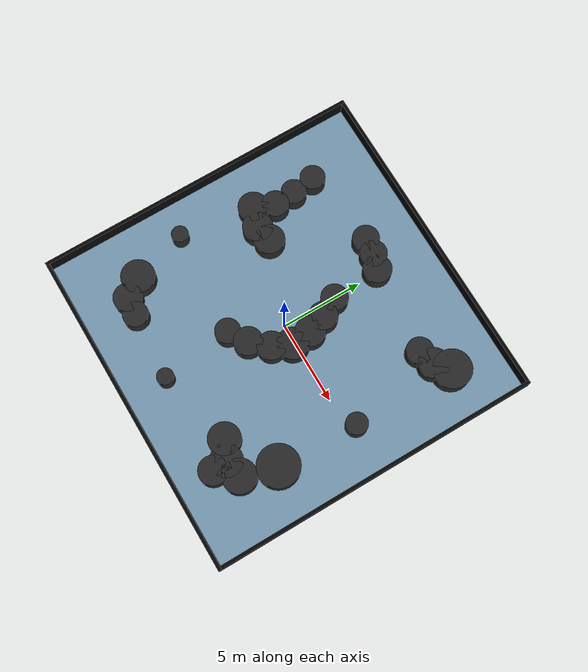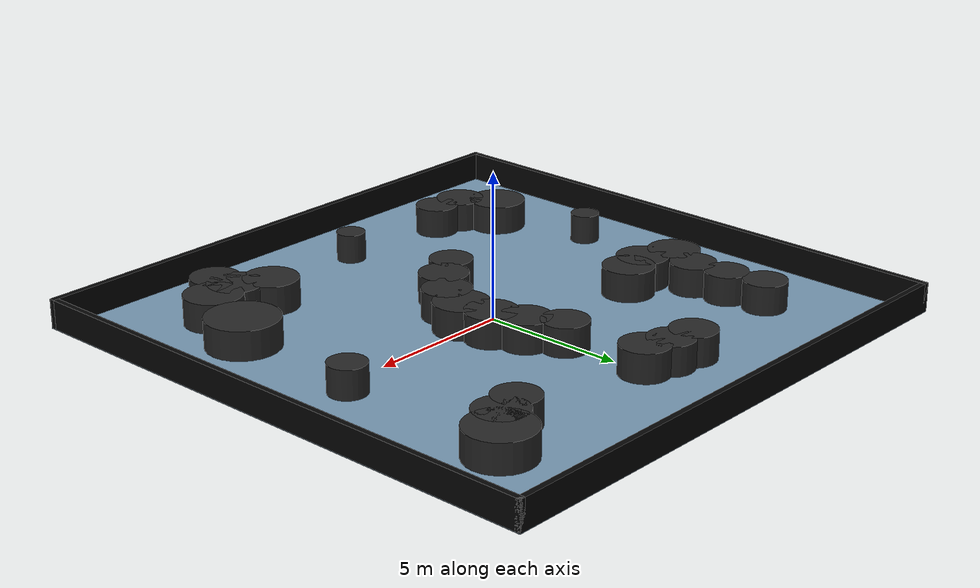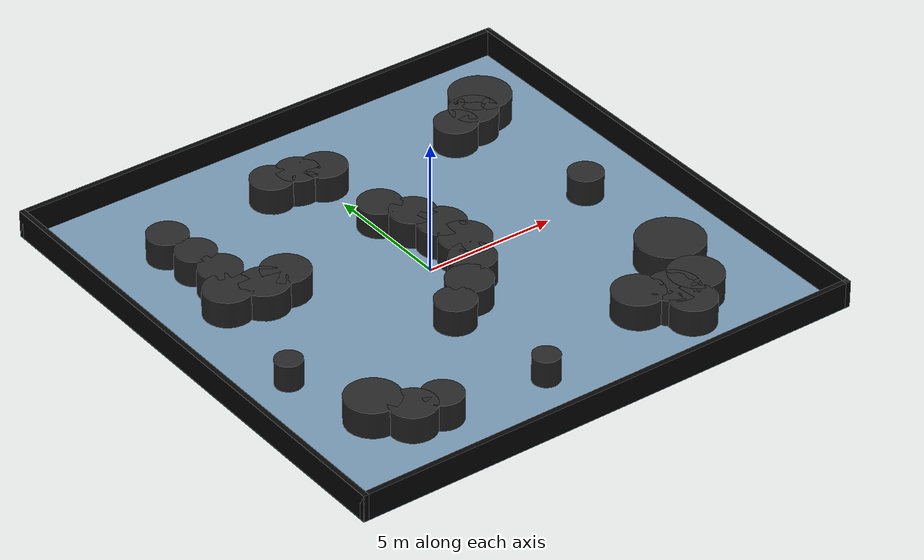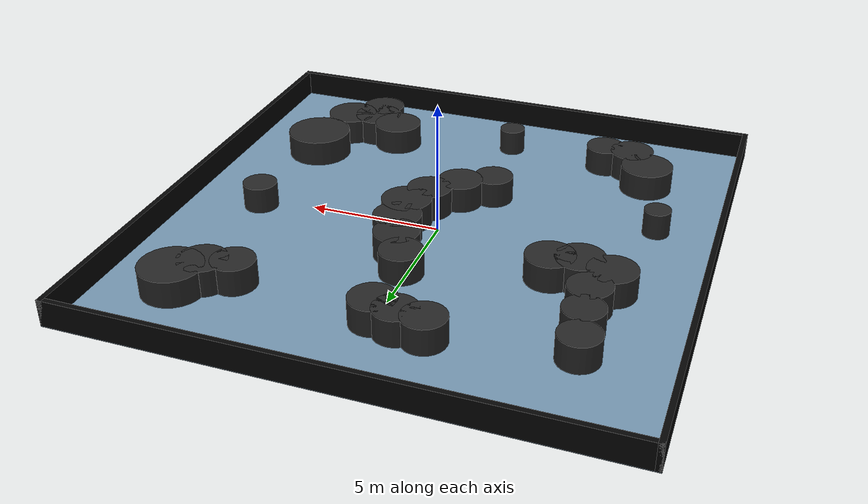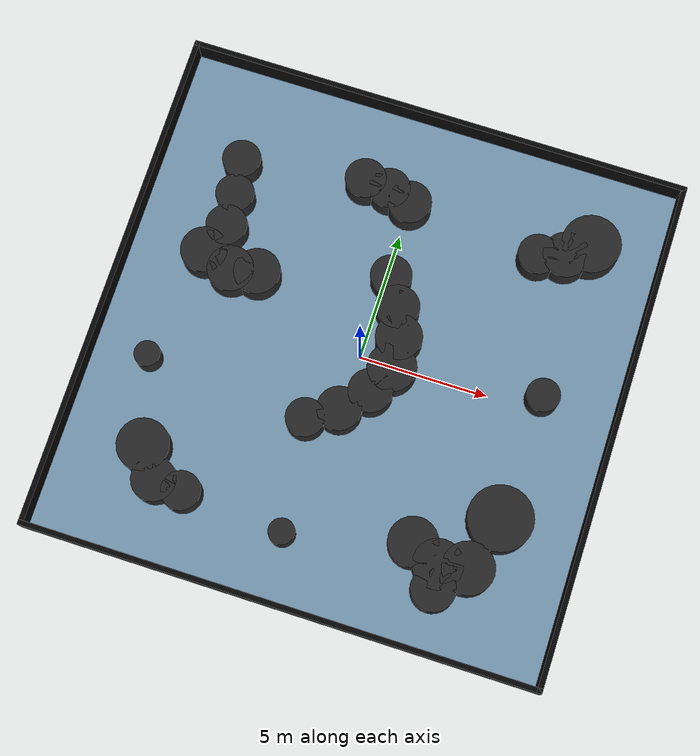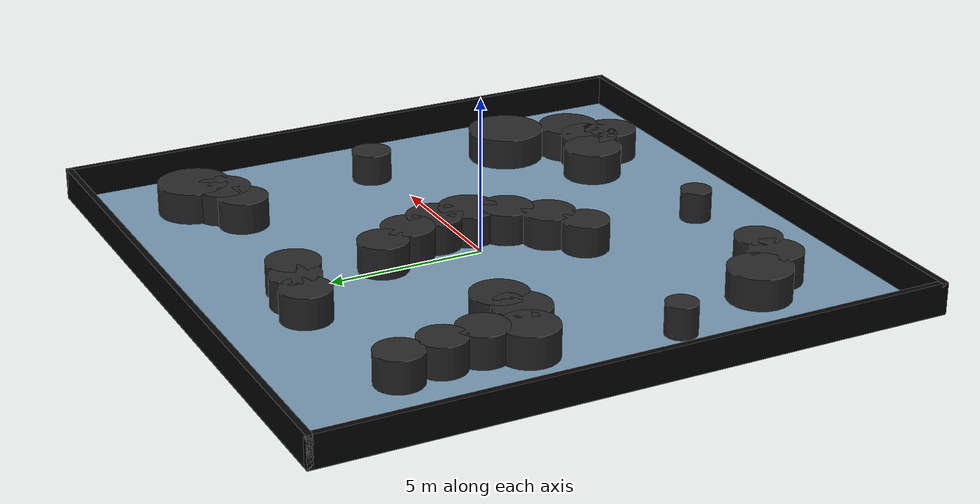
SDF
<?xml version="1.0" ?>
<sdf version="1.9">
  <world name="map_20x20_organic_idea1">

    <gravity>0 0 -9.81</gravity>

    <physics name="default_physics" type="ode">
      <max_step_size>0.001</max_step_size>
      <real_time_update_rate>1000</real_time_update_rate>

    </physics>

    <scene>
      <ambient>0.6 0.6 0.6 1</ambient>
      <background>0.8 0.8 0.8 1</background>
    </scene>

    <light name="sun" type="directional">
      <pose>0 0 10 0 0 0</pose>
      <diffuse>0.8 0.8 0.8 1</diffuse>
      <specular>0.2 0.2 0.2 1</specular>
      <direction>-0.5 0.5 -1</direction>
    </light>

    <!-- Piso claro 20x20 centrado em (0,0) -->
    <model name="ground_plane">
      <static>true</static>
      <link name="link">
        <collision name="collision">
          <geometry>
            <box>
              <size>20 20 0.02</size>
            </box>
          </geometry>
        </collision>
        <visual name="visual">
          <geometry>
            <box>
              <size>20 20 0.02</size>
            </box>
          </geometry>
          <material>
            <ambient>0.45 0.58 0.68 1.0</ambient>
            <diffuse>0.45 0.58 0.68 1.0</diffuse>
            <specular>0.05 0.05 0.05 1.0</specular>
          </material>
        </visual>
      </link>
      <pose>0 0 -0.01 0 0 0</pose>
    </model>

    <!-- Paredes externas iguais ao primeiro mundo -->
    <model name="wall_south">
      <static>true</static>
      <link name="link">
        <collision name="collision"><geometry><box><size>20 0.2 1</size></box></geometry></collision>
        <visual name="visual"><geometry><box><size>20 0.2 1</size></box></geometry><material><ambient>0.02 0.02 0.02 1</ambient><diffuse>0.02 0.02 0.02 1</diffuse></material></visual>
      </link>
      <pose>0 -9.9 0.5 0 0 0</pose>
    </model>

    <model name="wall_north">
      <static>true</static>
      <link name="link">
        <collision name="collision"><geometry><box><size>20 0.2 1</size></box></geometry></collision>
        <visual name="visual"><geometry><box><size>20 0.2 1</size></box></geometry><material><ambient>0.02 0.02 0.02 1</ambient><diffuse>0.02 0.02 0.02 1</diffuse></material></visual>
      </link>
      <pose>0 9.9 0.5 0 0 0</pose>
    </model>

    <model name="wall_west">
      <static>true</static>
      <link name="link">
        <collision name="collision"><geometry><box><size>0.2 20 1</size></box></geometry></collision>
        <visual name="visual"><geometry><box><size>0.2 20 1</size></box></geometry><material><ambient>0.02 0.02 0.02 1</ambient><diffuse>0.02 0.02 0.02 1</diffuse></material></visual>
      </link>
      <pose>-9.9 0 0.5 0 0 0</pose>
    </model>

    <model name="wall_east">
      <static>true</static>
      <link name="link">
        <collision name="collision"><geometry><box><size>0.2 20 1</size></box></geometry></collision>
        <visual name="visual"><geometry><box><size>0.2 20 1</size></box></geometry><material><ambient>0.02 0.02 0.02 1</ambient><diffuse>0.02 0.02 0.02 1</diffuse></material></visual>
      </link>
      <pose>9.9 0 0.5 0 0 0</pose>
    </model>

    <!-- Obstáculos orgânicos -->
    <model name="organic_obstacles">
      <static>true</static>
      <pose>0 -1 0 0 0 0</pose>
      <link name="link">

        <!-- Ilha superior esquerda vertical -->
        <collision name="c01"><pose>-6.7 6.9 0.5 0 0 0</pose><geometry><cylinder><radius>0.75</radius><length>1</length></cylinder></geometry></collision>
        <visual name="v01"><pose>-6.7 6.9 0.5 0 0 0</pose><geometry><cylinder><radius>0.75</radius><length>1</length></cylinder></geometry><material><ambient>0.15 0.15 0.15 1</ambient><diffuse>0.15 0.15 0.15 1</diffuse></material></visual>

        <collision name="c02"><pose>-6.5 5.5 0.5 0 0 0</pose><geometry><cylinder><radius>0.75</radius><length>1</length></cylinder></geometry></collision>
        <visual name="v02"><pose>-6.5 5.5 0.5 0 0 0</pose><geometry><cylinder><radius>0.75</radius><length>1</length></cylinder></geometry><material><ambient>0.15 0.15 0.15 1</ambient><diffuse>0.15 0.15 0.15 1</diffuse></material></visual>

        <collision name="c03"><pose>-6.4 4.2 0.5 0 0 0</pose><geometry><cylinder><radius>0.80</radius><length>1</length></cylinder></geometry></collision>
        <visual name="v03"><pose>-6.4 4.2 0.5 0 0 0</pose><geometry><cylinder><radius>0.80</radius><length>1</length></cylinder></geometry><material><ambient>0.15 0.15 0.15 1</ambient><diffuse>0.15 0.15 0.15 1</diffuse></material></visual>

        <collision name="c04"><pose>-6.9 3.0 0.5 0 0 0</pose><geometry><cylinder><radius>0.90</radius><length>1</length></cylinder></geometry></collision>
        <visual name="v04"><pose>-6.9 3.0 0.5 0 0 0</pose><geometry><cylinder><radius>0.90</radius><length>1</length></cylinder></geometry><material><ambient>0.15 0.15 0.15 1</ambient><diffuse>0.15 0.15 0.15 1</diffuse></material></visual>

        <collision name="c05"><pose>-5.7 2.6 0.5 0 0 0</pose><geometry><cylinder><radius>0.90</radius><length>1</length></cylinder></geometry></collision>
        <visual name="v05"><pose>-5.7 2.6 0.5 0 0 0</pose><geometry><cylinder><radius>0.90</radius><length>1</length></cylinder></geometry><material><ambient>0.15 0.15 0.15 1</ambient><diffuse>0.15 0.15 0.15 1</diffuse></material></visual>

        <collision name="c06"><pose>-4.7 2.8 0.5 0 0 0</pose><geometry><cylinder><radius>0.90</radius><length>1</length></cylinder></geometry></collision>
        <visual name="v06"><pose>-4.7 2.8 0.5 0 0 0</pose><geometry><cylinder><radius>0.90</radius><length>1</length></cylinder></geometry><material><ambient>0.15 0.15 0.15 1</ambient><diffuse>0.15 0.15 0.15 1</diffuse></material></visual>

        <!-- Ilha superior central -->
        <collision name="c07"><pose>-1.9 7.6 0.5 0 0 0</pose><geometry><cylinder><radius>0.80</radius><length>1</length></cylinder></geometry></collision>
        <visual name="v07"><pose>-1.9 7.6 0.5 0 0 0</pose><geometry><cylinder><radius>0.80</radius><length>1</length></cylinder></geometry><material><ambient>0.15 0.15 0.15 1</ambient><diffuse>0.15 0.15 0.15 1</diffuse></material></visual>

        <collision name="c08"><pose>-0.9 7.5 0.5 0 0 0</pose><geometry><cylinder><radius>0.80</radius><length>1</length></cylinder></geometry></collision>
        <visual name="v08"><pose>-0.9 7.5 0.5 0 0 0</pose><geometry><cylinder><radius>0.80</radius><length>1</length></cylinder></geometry><material><ambient>0.15 0.15 0.15 1</ambient><diffuse>0.15 0.15 0.15 1</diffuse></material></visual>

        <collision name="c09"><pose>0.0 7.2 0.5 0 0 0</pose><geometry><cylinder><radius>0.85</radius><length>1</length></cylinder></geometry></collision>
        <visual name="v09"><pose>0.0 7.2 0.5 0 0 0</pose><geometry><cylinder><radius>0.85</radius><length>1</length></cylinder></geometry><material><ambient>0.15 0.15 0.15 1</ambient><diffuse>0.15 0.15 0.15 1</diffuse></material></visual>

        <!-- Ilha superior direita -->
        <collision name="c10"><pose>5.3 6.7 0.5 0 0 0</pose><geometry><cylinder><radius>0.80</radius><length>1</length></cylinder></geometry></collision>
        <visual name="v10"><pose>5.3 6.7 0.5 0 0 0</pose><geometry><cylinder><radius>0.80</radius><length>1</length></cylinder></geometry><material><ambient>0.15 0.15 0.15 1</ambient><diffuse>0.15 0.15 0.15 1</diffuse></material></visual>

        <collision name="c11"><pose>6.3 7.0 0.5 0 0 0</pose><geometry><cylinder><radius>0.90</radius><length>1</length></cylinder></geometry></collision>
        <visual name="v11"><pose>6.3 7.0 0.5 0 0 0</pose><geometry><cylinder><radius>0.90</radius><length>1</length></cylinder></geometry><material><ambient>0.15 0.15 0.15 1</ambient><diffuse>0.15 0.15 0.15 1</diffuse></material></visual>

        <collision name="c12"><pose>7.1 7.7 0.5 0 0 0</pose><geometry><cylinder><radius>1.15</radius><length>1</length></cylinder></geometry></collision>
        <visual name="v12"><pose>7.1 7.7 0.5 0 0 0</pose><geometry><cylinder><radius>1.15</radius><length>1</length></cylinder></geometry><material><ambient>0.15 0.15 0.15 1</ambient><diffuse>0.15 0.15 0.15 1</diffuse></material></visual>

        <!-- Obstáculo curvo central -->
        <collision name="c13"><pose>0.2 4.2 0.5 0 0 0</pose><geometry><cylinder><radius>0.80</radius><length>1</length></cylinder></geometry></collision>
        <visual name="v13"><pose>0.2 4.2 0.5 0 0 0</pose><geometry><cylinder><radius>0.80</radius><length>1</length></cylinder></geometry><material><ambient>0.15 0.15 0.15 1</ambient><diffuse>0.15 0.15 0.15 1</diffuse></material></visual>

        <collision name="c14"><pose>0.8 3.1 0.5 0 0 0</pose><geometry><cylinder><radius>0.85</radius><length>1</length></cylinder></geometry></collision>
        <visual name="v14"><pose>0.8 3.1 0.5 0 0 0</pose><geometry><cylinder><radius>0.85</radius><length>1</length></cylinder></geometry><material><ambient>0.15 0.15 0.15 1</ambient><diffuse>0.15 0.15 0.15 1</diffuse></material></visual>

        <collision name="c15"><pose>1.2 2.0 0.5 0 0 0</pose><geometry><cylinder><radius>0.90</radius><length>1</length></cylinder></geometry></collision>
        <visual name="v15"><pose>1.2 2.0 0.5 0 0 0</pose><geometry><cylinder><radius>0.90</radius><length>1</length></cylinder></geometry><material><ambient>0.15 0.15 0.15 1</ambient><diffuse>0.15 0.15 0.15 1</diffuse></material></visual>

        <collision name="c16"><pose>1.3 0.8 0.5 0 0 0</pose><geometry><cylinder><radius>0.95</radius><length>1</length></cylinder></geometry></collision>
        <visual name="v16"><pose>1.3 0.8 0.5 0 0 0</pose><geometry><cylinder><radius>0.95</radius><length>1</length></cylinder></geometry><material><ambient>0.15 0.15 0.15 1</ambient><diffuse>0.15 0.15 0.15 1</diffuse></material></visual>

        <collision name="c17"><pose>0.8 -0.3 0.5 0 0 0</pose><geometry><cylinder><radius>0.85</radius><length>1</length></cylinder></geometry></collision>
        <visual name="v17"><pose>0.8 -0.3 0.5 0 0 0</pose><geometry><cylinder><radius>0.85</radius><length>1</length></cylinder></geometry><material><ambient>0.15 0.15 0.15 1</ambient><diffuse>0.15 0.15 0.15 1</diffuse></material></visual>

        <collision name="c18"><pose>-0.1 -1.3 0.5 0 0 0</pose><geometry><cylinder><radius>0.85</radius><length>1</length></cylinder></geometry></collision>
        <visual name="v18"><pose>-0.1 -1.3 0.5 0 0 0</pose><geometry><cylinder><radius>0.85</radius><length>1</length></cylinder></geometry><material><ambient>0.15 0.15 0.15 1</ambient><diffuse>0.15 0.15 0.15 1</diffuse></material></visual>

        <collision name="c19"><pose>-1.2 -2.0 0.5 0 0 0</pose><geometry><cylinder><radius>0.75</radius><length>1</length></cylinder></geometry></collision>
        <visual name="v19"><pose>-1.2 -2.0 0.5 0 0 0</pose><geometry><cylinder><radius>0.75</radius><length>1</length></cylinder></geometry><material><ambient>0.15 0.15 0.15 1</ambient><diffuse>0.15 0.15 0.15 1</diffuse></material></visual>

        <!-- Ilha inferior esquerda -->
        <collision name="c20"><pose>-6.6 -4.8 0.5 0 0 0</pose><geometry><cylinder><radius>1.00</radius><length>1</length></cylinder></geometry></collision>
        <visual name="v20"><pose>-6.6 -4.8 0.5 0 0 0</pose><geometry><cylinder><radius>1.00</radius><length>1</length></cylinder></geometry><material><ambient>0.15 0.15 0.15 1</ambient><diffuse>0.15 0.15 0.15 1</diffuse></material></visual>

        <collision name="c21"><pose>-5.8 -5.9 0.5 0 0 0</pose><geometry><cylinder><radius>0.85</radius><length>1</length></cylinder></geometry></collision>
        <visual name="v21"><pose>-5.8 -5.9 0.5 0 0 0</pose><geometry><cylinder><radius>0.85</radius><length>1</length></cylinder></geometry><material><ambient>0.15 0.15 0.15 1</ambient><diffuse>0.15 0.15 0.15 1</diffuse></material></visual>

        <collision name="c22"><pose>-4.7 -6.0 0.5 0 0 0</pose><geometry><cylinder><radius>0.75</radius><length>1</length></cylinder></geometry></collision>
        <visual name="v22"><pose>-4.7 -6.0 0.5 0 0 0</pose><geometry><cylinder><radius>0.75</radius><length>1</length></cylinder></geometry><material><ambient>0.15 0.15 0.15 1</ambient><diffuse>0.15 0.15 0.15 1</diffuse></material></visual>

        <!-- Ilha inferior direita -->
        <collision name="c23"><pose>4.0 -5.2 0.5 0 0 0</pose><geometry><cylinder><radius>0.95</radius><length>1</length></cylinder></geometry></collision>
        <visual name="v23"><pose>4.0 -5.2 0.5 0 0 0</pose><geometry><cylinder><radius>0.95</radius><length>1</length></cylinder></geometry><material><ambient>0.15 0.15 0.15 1</ambient><diffuse>0.15 0.15 0.15 1</diffuse></material></visual>

        <collision name="c24"><pose>5.1 -5.7 0.5 0 0 0</pose><geometry><cylinder><radius>0.95</radius><length>1</length></cylinder></geometry></collision>
        <visual name="v24"><pose>5.1 -5.7 0.5 0 0 0</pose><geometry><cylinder><radius>0.95</radius><length>1</length></cylinder></geometry><material><ambient>0.15 0.15 0.15 1</ambient><diffuse>0.15 0.15 0.15 1</diffuse></material></visual>

        <collision name="c25"><pose>6.2 -5.5 0.5 0 0 0</pose><geometry><cylinder><radius>1.00</radius><length>1</length></cylinder></geometry></collision>
        <visual name="v25"><pose>6.2 -5.5 0.5 0 0 0</pose><geometry><cylinder><radius>1.00</radius><length>1</length></cylinder></geometry><material><ambient>0.15 0.15 0.15 1</ambient><diffuse>0.15 0.15 0.15 1</diffuse></material></visual>

        <collision name="c26"><pose>5.2 -6.6 0.5 0 0 0</pose><geometry><cylinder><radius>0.85</radius><length>1</length></cylinder></geometry></collision>
        <visual name="v26"><pose>5.2 -6.6 0.5 0 0 0</pose><geometry><cylinder><radius>0.85</radius><length>1</length></cylinder></geometry><material><ambient>0.15 0.15 0.15 1</ambient><diffuse>0.15 0.15 0.15 1</diffuse></material></visual>

        <collision name="c27"><pose>6.8 -3.4 0.5 0 0 0</pose><geometry><cylinder><radius>1.25</radius><length>1</length></cylinder></geometry></collision>
        <visual name="v27"><pose>6.8 -3.4 0.5 0 0 0</pose><geometry><cylinder><radius>1.25</radius><length>1</length></cylinder></geometry><material><ambient>0.15 0.15 0.15 1</ambient><diffuse>0.15 0.15 0.15 1</diffuse></material></visual>

        <!-- Obstáculos isolados -->
        <collision name="c28"><pose>-7.6 -1.5 0.5 0 0 0</pose><geometry><cylinder><radius>0.50</radius><length>1</length></cylinder></geometry></collision>
        <visual name="v28"><pose>-7.6 -1.5 0.5 0 0 0</pose><geometry><cylinder><radius>0.50</radius><length>1</length></cylinder></geometry><material><ambient>0.15 0.15 0.15 1</ambient><diffuse>0.15 0.15 0.15 1</diffuse></material></visual>

        <collision name="c29"><pose>-0.7 -6.3 0.5 0 0 0</pose><geometry><cylinder><radius>0.50</radius><length>1</length></cylinder></geometry></collision>
        <visual name="v29"><pose>-0.7 -6.3 0.5 0 0 0</pose><geometry><cylinder><radius>0.50</radius><length>1</length></cylinder></geometry><material><ambient>0.15 0.15 0.15 1</ambient><diffuse>0.15 0.15 0.15 1</diffuse></material></visual>

        <collision name="c30"><pose>7.0 1.5 0.5 0 0 0</pose><geometry><cylinder><radius>0.65</radius><length>1</length></cylinder></geometry></collision>
        <visual name="v30"><pose>7.0 1.5 0.5 0 0 0</pose><geometry><cylinder><radius>0.65</radius><length>1</length></cylinder></geometry><material><ambient>0.15 0.15 0.15 1</ambient><diffuse>0.15 0.15 0.15 1</diffuse></material></visual>

      </link>
    </model>

  </world>
</sdf>
